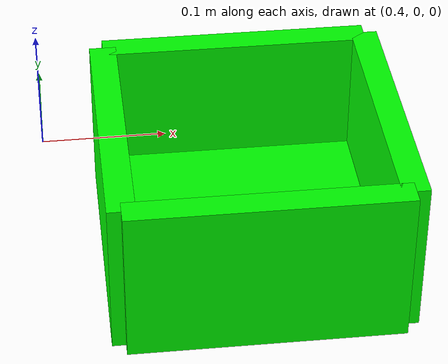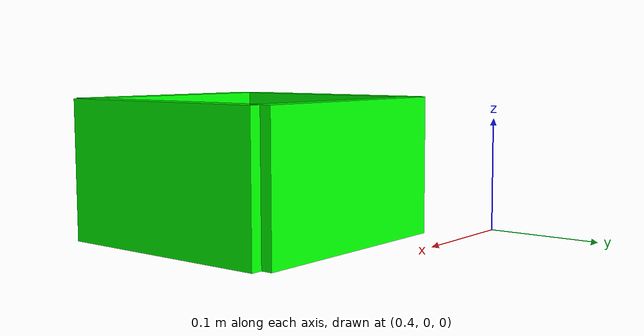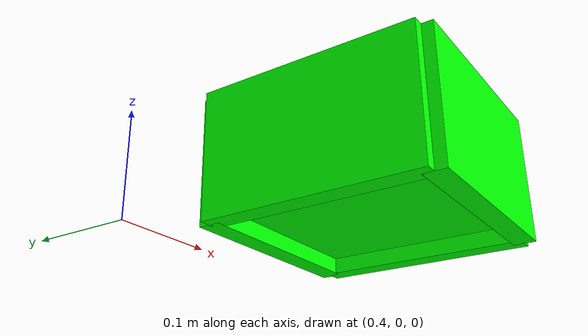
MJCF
<mujoco model="tray">
  <worldbody>
         <body name="tray_body_g" pos="0.55 -0.15 0.0" quat="0.0 0 0 0">
             <geom mass="2000" pos="0 0 0.02" rgba="0 1 0 1" size="0.1 0.1 0.005" type="box" />
             <geom pos="0 0.1 0.06" rgba="0 1 0 1" size="0.1 0.01 0.06" type="box" />
             <geom pos="0 -0.1 0.06" rgba="0 1 0 1" size="0.1 0.01 0.06" type="box" />
             <geom pos="0.1 0 0.06" rgba="0 1 0 1" size="0.01 0.1 0.06" type="box" />
             <geom pos="-0.1 0 0.06" rgba="0 1 0 1" size="0.01 0.1 0.06" type="box" />
         </body>
  </worldbody>
</mujoco>
